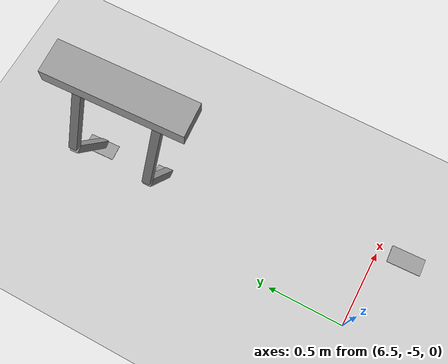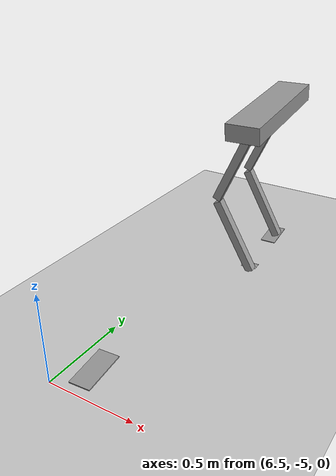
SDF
<sdf version="1.7">
 <world name="default">
  <model name="ground_plane">
   <static>1</static>
   <link name="link">
    <collision name="collision">
     <geometry><plane><normal>0 0 1</normal><size>100 100</size></plane></geometry>
     <surface>
      <contact><collide_bitmask>65535</collide_bitmask></contact>
      <friction><ode><mu>100</mu><mu2>50</mu2></ode></friction>
     </surface>
    </collision>
    <visual name="visual">
     <cast_shadows>0</cast_shadows>
     <geometry><plane><normal>0 0 1</normal><size>100 100</size></plane></geometry>
     <material>
      <script><uri>file://media/materials/scripts/gazebo.material</uri><name>Gazebo/Grey</name></script>
     </material>
    </visual>
   </link>
  </model>
  <model name="HumanoidRobot_clone">
   <link name="link_0">
    <inertial>
     <mass>1</mass>
     <inertia>
      <ixx>0.166667</ixx>
      <ixy>0</ixy>
      <ixz>0</ixz>
      <iyy>0.166667</iyy>
      <iyz>0</iyz>
      <izz>0.166667</izz>
     </inertia>
    </inertial>
    <pose>0.079366 0.216312 0.457777 0 -0 0</pose>
    <visual name="visual">
     <geometry><box><size>0.2 0.8 0.1</size></box></geometry>
     <material>
      <lighting>1</lighting>
      <script><uri>file://media/materials/scripts/gazebo.material</uri><name>Gazebo/Grey</name></script>
      <shader type="pixel"><normal_map>__default__</normal_map></shader>
      <ambient>0.3 0.3 0.3 1</ambient>
      <diffuse>0.7 0.7 0.7 1</diffuse>
      <specular>0.01 0.01 0.01 1</specular>
      <emissive>0 0 0 1</emissive>
     </material>
    </visual>
    <collision name="collision">
     <geometry><box><size>0.2 0.8 0.1</size></box></geometry>
     <surface>
      <friction>
       <ode><mu>1</mu><mu2>1</mu2><fdir1>0 0 0</fdir1><slip1>0</slip1><slip2>0</slip2></ode>
       <torsional>
        <coefficient>1</coefficient>
        <patch_radius>0</patch_radius>
        <surface_radius>0</surface_radius>
        <use_patch_radius>1</use_patch_radius>
        <ode><slip>0</slip></ode>
       </torsional>
      </friction>
      <bounce><restitution_coefficient>0</restitution_coefficient><threshold>1e+06</threshold></bounce>
      <contact>
       <collide_without_contact>0</collide_without_contact>
       <collide_without_contact_bitmask>1</collide_without_contact_bitmask>
       <collide_bitmask>1</collide_bitmask>
       <ode>
        <soft_cfm>0</soft_cfm>
        <soft_erp>0.2</soft_erp>
        <kp>1e+13</kp>
        <kd>1</kd>
        <max_vel>0.01</max_vel>
        <min_depth>0</min_depth>
       </ode>
       <bullet>
        <split_impulse>1</split_impulse>
        <split_impulse_penetration_threshold>-0.01</split_impulse_penetration_threshold>
        <soft_cfm>0</soft_cfm>
        <soft_erp>0.2</soft_erp>
        <kp>1e+13</kp>
        <kd>1</kd>
       </bullet>
      </contact>
     </surface>
    </collision>
   </link>
   <link name="link_1">
    <inertial>
     <mass>1</mass>
     <inertia>
      <ixx>0.166667</ixx>
      <ixy>0</ixy>
      <ixz>0</ixz>
      <iyy>0.166667</iyy>
      <iyz>0</iyz>
      <izz>0.166667</izz>
     </inertia>
    </inertial>
    <pose>0.035258 -0.030805 -0.033667 0 -0 0</pose>
    <visual name="visual">
     <pose>0 0 -0.5 0 -0 0</pose>
     <geometry><box><size>0.1 0.2 0.005</size></box></geometry>
     <material>
      <lighting>1</lighting>
      <script><uri>file://media/materials/scripts/gazebo.material</uri><name>Gazebo/Grey</name></script>
      <shader type="pixel"><normal_map>__default__</normal_map></shader>
      <ambient>0.3 0.3 0.3 1</ambient>
      <diffuse>0.7 0.7 0.7 1</diffuse>
      <specular>0.01 0.01 0.01 1</specular>
      <emissive>0 0 0 1</emissive>
     </material>
    </visual>
    <collision name="collision">
     <pose>0 0 -0.5 0 -0 0</pose>
     <geometry><box><size>0.1 0.2 0.005</size></box></geometry>
     <surface>
      <friction>
       <ode><mu>1</mu><mu2>1</mu2><fdir1>0 0 0</fdir1><slip1>0</slip1><slip2>0</slip2></ode>
       <torsional>
        <coefficient>1</coefficient>
        <patch_radius>0</patch_radius>
        <surface_radius>0</surface_radius>
        <use_patch_radius>1</use_patch_radius>
        <ode><slip>0</slip></ode>
       </torsional>
      </friction>
      <bounce><restitution_coefficient>0</restitution_coefficient><threshold>1e+06</threshold></bounce>
      <contact>
       <collide_without_contact>0</collide_without_contact>
       <collide_without_contact_bitmask>1</collide_without_contact_bitmask>
       <collide_bitmask>1</collide_bitmask>
       <ode>
        <soft_cfm>0</soft_cfm>
        <soft_erp>0.2</soft_erp>
        <kp>1e+13</kp>
        <kd>1</kd>
        <max_vel>0.01</max_vel>
        <min_depth>0</min_depth>
       </ode>
       <bullet>
        <split_impulse>1</split_impulse>
        <split_impulse_penetration_threshold>-0.01</split_impulse_penetration_threshold>
        <soft_cfm>0</soft_cfm>
        <soft_erp>0.2</soft_erp>
        <kp>1e+13</kp>
        <kd>1</kd>
       </bullet>
      </contact>
     </surface>
    </collision>
   </link>
   <link name="link_1_clone">
    <inertial>
     <mass>1</mass>
     <inertia>
      <ixx>0.166667</ixx>
      <ixy>0</ixy>
      <ixz>0</ixz>
      <iyy>0.166667</iyy>
      <iyz>0</iyz>
      <izz>0.166667</izz>
     </inertia>
    </inertial>
    <pose>0.038471 -1.52445 -0.033667 0 -0 0</pose>
    <visual name="visual">
     <geometry><box><size>0.1 0.2 0.005</size></box></geometry>
     <material>
      <lighting>1</lighting>
      <script><uri>file://media/materials/scripts/gazebo.material</uri><name>Gazebo/Grey</name></script>
      <shader type="pixel"><normal_map>__default__</normal_map></shader>
      <ambient>0.3 0.3 0.3 1</ambient>
      <diffuse>0.7 0.7 0.7 1</diffuse>
      <specular>0.01 0.01 0.01 1</specular>
      <emissive>0 0 0 1</emissive>
     </material>
    </visual>
    <collision name="collision">
     <geometry><box><size>0.1 0.2 0.005</size></box></geometry>
     <surface>
      <friction>
       <ode><mu>1</mu><mu2>1</mu2><fdir1>0 0 0</fdir1><slip1>0</slip1><slip2>0</slip2></ode>
       <torsional>
        <coefficient>1</coefficient>
        <patch_radius>0</patch_radius>
        <surface_radius>0</surface_radius>
        <use_patch_radius>1</use_patch_radius>
        <ode><slip>0</slip></ode>
       </torsional>
      </friction>
      <bounce><restitution_coefficient>0</restitution_coefficient><threshold>1e+06</threshold></bounce>
      <contact>
       <collide_without_contact>0</collide_without_contact>
       <collide_without_contact_bitmask>1</collide_without_contact_bitmask>
       <collide_bitmask>1</collide_bitmask>
       <ode>
        <soft_cfm>0</soft_cfm>
        <soft_erp>0.2</soft_erp>
        <kp>1e+13</kp>
        <kd>1</kd>
        <max_vel>0.01</max_vel>
        <min_depth>0</min_depth>
       </ode>
       <bullet>
        <split_impulse>1</split_impulse>
        <split_impulse_penetration_threshold>-0.01</split_impulse_penetration_threshold>
        <soft_cfm>0</soft_cfm>
        <soft_erp>0.2</soft_erp>
        <kp>1e+13</kp>
        <kd>1</kd>
       </bullet>
      </contact>
     </surface>
    </collision>
   </link>
   <link name="link_1_clone_0">
    <inertial>
     <mass>1</mass>
     <inertia>
      <ixx>0.166667</ixx>
      <ixy>0</ixy>
      <ixz>0</ixz>
      <iyy>0.166667</iyy>
      <iyz>0</iyz>
      <izz>0.166667</izz>
     </inertia>
    </inertial>
    <pose>0.035258 0.453517 -0.033667 0 -0 0</pose>
    <visual name="visual">
     <pose>0 0 -0.5 0 -0 0</pose>
     <geometry><box><size>0.1 0.2 0.005</size></box></geometry>
     <material>
      <lighting>1</lighting>
      <script><uri>file://media/materials/scripts/gazebo.material</uri><name>Gazebo/Grey</name></script>
      <shader type="pixel"><normal_map>__default__</normal_map></shader>
      <ambient>0.3 0.3 0.3 1</ambient>
      <diffuse>0.7 0.7 0.7 1</diffuse>
      <specular>0.01 0.01 0.01 1</specular>
      <emissive>0 0 0 1</emissive>
     </material>
    </visual>
    <collision name="collision">
     <pose>0 0 -0.5 0 -0 0</pose>
     <geometry><box><size>0.1 0.2 0.005</size></box></geometry>
     <surface>
      <friction>
       <ode><mu>1</mu><mu2>1</mu2><fdir1>0 0 0</fdir1><slip1>0</slip1><slip2>0</slip2></ode>
       <torsional>
        <coefficient>1</coefficient>
        <patch_radius>0</patch_radius>
        <surface_radius>0</surface_radius>
        <use_patch_radius>1</use_patch_radius>
        <ode><slip>0</slip></ode>
       </torsional>
      </friction>
      <bounce><restitution_coefficient>0</restitution_coefficient><threshold>1e+06</threshold></bounce>
      <contact>
       <collide_without_contact>0</collide_without_contact>
       <collide_without_contact_bitmask>1</collide_without_contact_bitmask>
       <collide_bitmask>1</collide_bitmask>
       <ode>
        <soft_cfm>0</soft_cfm>
        <soft_erp>0.2</soft_erp>
        <kp>1e+13</kp>
        <kd>1</kd>
        <max_vel>0.01</max_vel>
        <min_depth>0</min_depth>
       </ode>
       <bullet>
        <split_impulse>1</split_impulse>
        <split_impulse_penetration_threshold>-0.01</split_impulse_penetration_threshold>
        <soft_cfm>0</soft_cfm>
        <soft_erp>0.2</soft_erp>
        <kp>1e+13</kp>
        <kd>1</kd>
       </bullet>
      </contact>
     </surface>
    </collision>
   </link>
   <link name="link_2">
    <inertial>
     <mass>1</mass>
     <inertia>
      <ixx>0.166667</ixx>
      <ixy>0</ixy>
      <ixz>0</ixz>
      <iyy>0.166667</iyy>
      <iyz>0</iyz>
      <izz>0.166667</izz>
     </inertia>
    </inertial>
    <pose>-0.050369 -0.010805 0.171791 0 -0 0</pose>
    <visual name="visual">
     <pose>0 0 0 0 0.45 0</pose>
     <geometry><box><size>0.05 0.05 0.5</size></box></geometry>
     <material>
      <lighting>1</lighting>
      <script><uri>file://media/materials/scripts/gazebo.material</uri><name>Gazebo/Grey</name></script>
      <shader type="pixel"><normal_map>__default__</normal_map></shader>
      <ambient>0.3 0.3 0.3 1</ambient>
      <diffuse>0.7 0.7 0.7 1</diffuse>
      <specular>0.01 0.01 0.01 1</specular>
      <emissive>0 0 0 1</emissive>
     </material>
    </visual>
    <collision name="collision">
     <pose>0 0 0 0 0.45 0</pose>
     <geometry><box><size>0.05 0.05 0.5</size></box></geometry>
     <surface>
      <friction>
       <ode><mu>1</mu><mu2>1</mu2><fdir1>0 0 0</fdir1><slip1>0</slip1><slip2>0</slip2></ode>
       <torsional>
        <coefficient>1</coefficient>
        <patch_radius>0</patch_radius>
        <surface_radius>0</surface_radius>
        <use_patch_radius>1</use_patch_radius>
        <ode><slip>0</slip></ode>
       </torsional>
      </friction>
      <bounce><restitution_coefficient>0</restitution_coefficient><threshold>1e+06</threshold></bounce>
      <contact>
       <collide_without_contact>0</collide_without_contact>
       <collide_without_contact_bitmask>1</collide_without_contact_bitmask>
       <collide_bitmask>1</collide_bitmask>
       <ode>
        <soft_cfm>0</soft_cfm>
        <soft_erp>0.2</soft_erp>
        <kp>1e+13</kp>
        <kd>1</kd>
        <max_vel>0.01</max_vel>
        <min_depth>0</min_depth>
       </ode>
       <bullet>
        <split_impulse>1</split_impulse>
        <split_impulse_penetration_threshold>-0.01</split_impulse_penetration_threshold>
        <soft_cfm>0</soft_cfm>
        <soft_erp>0.2</soft_erp>
        <kp>1e+13</kp>
        <kd>1</kd>
       </bullet>
      </contact>
     </surface>
    </collision>
   </link>
   <link name="link_2_clone">
    <inertial>
     <mass>1</mass>
     <inertia>
      <ixx>0.166667</ixx>
      <ixy>0</ixy>
      <ixz>0</ixz>
      <iyy>0.166667</iyy>
      <iyz>0</iyz>
      <izz>0.166667</izz>
     </inertia>
    </inertial>
    <pose>-0.045995 0.453517 0.171791 0 -0 0</pose>
    <visual name="visual">
     <pose>0 0 0 0 0.45 0</pose>
     <geometry><box><size>0.05 0.05 0.5</size></box></geometry>
     <material>
      <lighting>1</lighting>
      <script><uri>file://media/materials/scripts/gazebo.material</uri><name>Gazebo/Grey</name></script>
      <shader type="pixel"><normal_map>__default__</normal_map></shader>
      <ambient>0.3 0.3 0.3 1</ambient>
      <diffuse>0.7 0.7 0.7 1</diffuse>
      <specular>0.01 0.01 0.01 1</specular>
      <emissive>0 0 0 1</emissive>
     </material>
    </visual>
    <collision name="collision">
     <pose>0 0 0 0 0.45 0</pose>
     <geometry><box><size>0.05 0.05 0.5</size></box></geometry>
     <surface>
      <friction>
       <ode><mu>1</mu><mu2>1</mu2><fdir1>0 0 0</fdir1><slip1>0</slip1><slip2>0</slip2></ode>
       <torsional>
        <coefficient>1</coefficient>
        <patch_radius>0</patch_radius>
        <surface_radius>0</surface_radius>
        <use_patch_radius>1</use_patch_radius>
        <ode><slip>0</slip></ode>
       </torsional>
      </friction>
      <bounce><restitution_coefficient>0</restitution_coefficient><threshold>1e+06</threshold></bounce>
      <contact>
       <collide_without_contact>0</collide_without_contact>
       <collide_without_contact_bitmask>1</collide_without_contact_bitmask>
       <collide_bitmask>1</collide_bitmask>
       <ode>
        <soft_cfm>0</soft_cfm>
        <soft_erp>0.2</soft_erp>
        <kp>1e+13</kp>
        <kd>1</kd>
        <max_vel>0.01</max_vel>
        <min_depth>0</min_depth>
       </ode>
       <bullet>
        <split_impulse>1</split_impulse>
        <split_impulse_penetration_threshold>-0.01</split_impulse_penetration_threshold>
        <soft_cfm>0</soft_cfm>
        <soft_erp>0.2</soft_erp>
        <kp>1e+13</kp>
        <kd>1</kd>
       </bullet>
      </contact>
     </surface>
    </collision>
   </link>
   <link name="link_2_clone_0">
    <inertial>
     <mass>1</mass>
     <inertia>
      <ixx>0.166667</ixx>
      <ixy>0</ixy>
      <ixz>0</ixz>
      <iyy>0.166667</iyy>
      <iyz>0</iyz>
      <izz>0.166667</izz>
     </inertia>
    </inertial>
    <pose>-0.045995 -0.010805 -0.350181 0 -0 0</pose>
    <visual name="visual">
     <pose>0 0 0.05 0 -0.45 0</pose>
     <geometry><box><size>0.05 0.05 0.5</size></box></geometry>
     <material>
      <lighting>1</lighting>
      <script><uri>file://media/materials/scripts/gazebo.material</uri><name>Gazebo/Grey</name></script>
      <shader type="pixel"><normal_map>__default__</normal_map></shader>
      <ambient>0.3 0.3 0.3 1</ambient>
      <diffuse>0.7 0.7 0.7 1</diffuse>
      <specular>0.01 0.01 0.01 1</specular>
      <emissive>0 0 0 1</emissive>
     </material>
    </visual>
    <collision name="collision">
     <pose>0 0 0.05 0 -0.45 0</pose>
     <geometry><box><size>0.05 0.05 0.5</size></box></geometry>
     <surface>
      <friction>
       <ode><mu>1</mu><mu2>1</mu2><fdir1>0 0 0</fdir1><slip1>0</slip1><slip2>0</slip2></ode>
       <torsional>
        <coefficient>1</coefficient>
        <patch_radius>0</patch_radius>
        <surface_radius>0</surface_radius>
        <use_patch_radius>1</use_patch_radius>
        <ode><slip>0</slip></ode>
       </torsional>
      </friction>
      <bounce><restitution_coefficient>0</restitution_coefficient><threshold>1e+06</threshold></bounce>
      <contact>
       <collide_without_contact>0</collide_without_contact>
       <collide_without_contact_bitmask>1</collide_without_contact_bitmask>
       <collide_bitmask>1</collide_bitmask>
       <ode>
        <soft_cfm>0</soft_cfm>
        <soft_erp>0.2</soft_erp>
        <kp>1e+13</kp>
        <kd>1</kd>
        <max_vel>0.01</max_vel>
        <min_depth>0</min_depth>
       </ode>
       <bullet>
        <split_impulse>1</split_impulse>
        <split_impulse_penetration_threshold>-0.01</split_impulse_penetration_threshold>
        <soft_cfm>0</soft_cfm>
        <soft_erp>0.2</soft_erp>
        <kp>1e+13</kp>
        <kd>1</kd>
       </bullet>
      </contact>
     </surface>
    </collision>
   </link>
   <link name="link_2_clone_0_clone">
    <inertial>
     <mass>1</mass>
     <inertia>
      <ixx>0.166667</ixx>
      <ixy>0</ixy>
      <ixz>0</ixz>
      <iyy>0.166667</iyy>
      <iyz>0</iyz>
      <izz>0.166667</izz>
     </inertia>
    </inertial>
    <pose>-0.045995 0.453517 -0.350181 0 -0 0</pose>
    <visual name="visual">
     <pose>0 0 0.05 0 -0.45 0</pose>
     <geometry><box><size>0.05 0.05 0.5</size></box></geometry>
     <material>
      <lighting>1</lighting>
      <script><uri>file://media/materials/scripts/gazebo.material</uri><name>Gazebo/Grey</name></script>
      <shader type="pixel"><normal_map>__default__</normal_map></shader>
      <ambient>0.3 0.3 0.3 1</ambient>
      <diffuse>0.7 0.7 0.7 1</diffuse>
      <specular>0.01 0.01 0.01 1</specular>
      <emissive>0 0 0 1</emissive>
     </material>
    </visual>
    <collision name="collision">
     <pose>0 0 0.05 0 -0.45 0</pose>
     <geometry><box><size>0.05 0.05 0.5</size></box></geometry>
     <surface>
      <friction>
       <ode><mu>1</mu><mu2>1</mu2><fdir1>0 0 0</fdir1><slip1>0</slip1><slip2>0</slip2></ode>
       <torsional>
        <coefficient>1</coefficient>
        <patch_radius>0</patch_radius>
        <surface_radius>0</surface_radius>
        <use_patch_radius>1</use_patch_radius>
        <ode><slip>0</slip></ode>
       </torsional>
      </friction>
      <bounce><restitution_coefficient>0</restitution_coefficient><threshold>1e+06</threshold></bounce>
      <contact>
       <collide_without_contact>0</collide_without_contact>
       <collide_without_contact_bitmask>1</collide_without_contact_bitmask>
       <collide_bitmask>1</collide_bitmask>
       <ode>
        <soft_cfm>0</soft_cfm>
        <soft_erp>0.2</soft_erp>
        <kp>1e+13</kp>
        <kd>1</kd>
        <max_vel>0.01</max_vel>
        <min_depth>0</min_depth>
       </ode>
       <bullet>
        <split_impulse>1</split_impulse>
        <split_impulse_penetration_threshold>-0.01</split_impulse_penetration_threshold>
        <soft_cfm>0</soft_cfm>
        <soft_erp>0.2</soft_erp>
        <kp>1e+13</kp>
        <kd>1</kd>
       </bullet>
      </contact>
     </surface>
    </collision>
   </link>
   <joint name="link_1_JOINT_13" type="screw">
    <parent>link_1</parent>
    <child>link_2_clone_0</child>
    <axis>
     <xyz>1 0 0</xyz>
     <limit>
      <lower>-1.79769e+308</lower>
      <upper>1.79769e+308</upper>
      <effort>-1</effort>
      <velocity>-1</velocity>
     </limit>
     <dynamics>
      <spring_reference>0</spring_reference>
      <spring_stiffness>0</spring_stiffness>
      <damping>0</damping>
     </dynamics>
    </axis>
    <physics>
     <ode><limit><cfm>0</cfm><erp>0.2</erp></limit><suspension><cfm>0</cfm><erp>0.2</erp></suspension></ode>
    </physics>
    <thread_pitch>1</thread_pitch>
   </joint>
   <joint name="link_1_JOINT_1" type="revolute">
    <parent>link_1</parent>
    <child>link_2_clone_0</child>
    <axis>
     <xyz>1 0 0</xyz>
     <limit>
      <lower>-1.79769e+308</lower>
      <upper>1.79769e+308</upper>
      <effort>-1</effort>
      <velocity>-1</velocity>
     </limit>
     <dynamics>
      <spring_reference>0</spring_reference>
      <spring_stiffness>0</spring_stiffness>
      <damping>0</damping>
     </dynamics>
    </axis>
    <physics>
     <ode><limit><cfm>0</cfm><erp>0.2</erp></limit><suspension><cfm>0</cfm><erp>0.2</erp></suspension></ode>
    </physics>
   </joint>
   <joint name="link_1_clone_0_JOINT_10" type="screw">
    <parent>link_1_clone_0</parent>
    <child>link_2_clone_0_clone</child>
    <axis>
     <xyz>1 0 0</xyz>
     <limit>
      <lower>-1.79769e+308</lower>
      <upper>1.79769e+308</upper>
      <effort>-1</effort>
      <velocity>-1</velocity>
     </limit>
     <dynamics>
      <spring_reference>0</spring_reference>
      <spring_stiffness>0</spring_stiffness>
      <damping>0</damping>
     </dynamics>
    </axis>
    <physics>
     <ode><limit><cfm>0</cfm><erp>0.2</erp></limit><suspension><cfm>0</cfm><erp>0.2</erp></suspension></ode>
    </physics>
    <thread_pitch>1</thread_pitch>
   </joint>
   <joint name="link_1_clone_0_JOINT_3" type="revolute">
    <parent>link_1_clone_0</parent>
    <child>link_2_clone_0_clone</child>
    <axis>
     <xyz>1 0 0</xyz>
     <limit>
      <lower>-1.79769e+308</lower>
      <upper>1.79769e+308</upper>
      <effort>-1</effort>
      <velocity>-1</velocity>
     </limit>
     <dynamics>
      <spring_reference>0</spring_reference>
      <spring_stiffness>0</spring_stiffness>
      <damping>0</damping>
     </dynamics>
    </axis>
    <physics>
     <ode><limit><cfm>0</cfm><erp>0.2</erp></limit><suspension><cfm>0</cfm><erp>0.2</erp></suspension></ode>
    </physics>
   </joint>
   <joint name="link_1_clone_0_JOINT_8" type="fixed">
    <parent>link_1_clone_0</parent>
    <child>link_2_clone_0_clone</child>
    <physics>
     <ode><limit><cfm>0</cfm><erp>0.2</erp></limit><suspension><cfm>0</cfm><erp>0.2</erp></suspension></ode>
    </physics>
   </joint>
   <joint name="link_2_JOINT_0" type="revolute">
    <parent>link_2</parent>
    <child>link_2_clone_0</child>
    <axis>
     <xyz>1 0 0</xyz>
     <limit>
      <lower>-1.79769e+308</lower>
      <upper>1.79769e+308</upper>
      <effort>-1</effort>
      <velocity>-1</velocity>
     </limit>
     <dynamics>
      <spring_reference>0</spring_reference>
      <spring_stiffness>0</spring_stiffness>
      <damping>0</damping>
     </dynamics>
    </axis>
    <physics>
     <ode><limit><cfm>0</cfm><erp>0.2</erp></limit><suspension><cfm>0</cfm><erp>0.2</erp></suspension></ode>
    </physics>
   </joint>
   <joint name="link_2_JOINT_14" type="revolute">
    <parent>link_2</parent>
    <child>link_2_clone_0</child>
    <axis>
     <xyz>1 0 0</xyz>
     <limit>
      <lower>-1.79769e+308</lower>
      <upper>1.79769e+308</upper>
      <effort>-1</effort>
      <velocity>-1</velocity>
     </limit>
     <dynamics>
      <spring_reference>0</spring_reference>
      <spring_stiffness>0</spring_stiffness>
      <damping>0</damping>
     </dynamics>
    </axis>
    <physics>
     <ode><limit><cfm>0</cfm><erp>0.2</erp></limit><suspension><cfm>0</cfm><erp>0.2</erp></suspension></ode>
    </physics>
   </joint>
   <joint name="link_2_JOINT_18" type="screw">
    <parent>link_2</parent>
    <child>link_0</child>
    <axis>
     <xyz>1 0 0</xyz>
     <limit>
      <lower>-1.79769e+308</lower>
      <upper>1.79769e+308</upper>
      <effort>-1</effort>
      <velocity>-1</velocity>
     </limit>
     <dynamics>
      <spring_reference>0</spring_reference>
      <spring_stiffness>0</spring_stiffness>
      <damping>0</damping>
     </dynamics>
    </axis>
    <physics>
     <ode><limit><cfm>0</cfm><erp>0.2</erp></limit><suspension><cfm>0</cfm><erp>0.2</erp></suspension></ode>
    </physics>
    <thread_pitch>1</thread_pitch>
   </joint>
   <joint name="link_2_clone_0_clone_JOINT_11" type="revolute">
    <parent>link_2_clone_0_clone</parent>
    <child>link_2_clone</child>
    <axis>
     <xyz>1 0 0</xyz>
     <limit>
      <lower>-1.79769e+308</lower>
      <upper>1.79769e+308</upper>
      <effort>-1</effort>
      <velocity>-1</velocity>
     </limit>
     <dynamics>
      <spring_reference>0</spring_reference>
      <spring_stiffness>0</spring_stiffness>
      <damping>0</damping>
     </dynamics>
    </axis>
    <physics>
     <ode><limit><cfm>0</cfm><erp>0.2</erp></limit><suspension><cfm>0</cfm><erp>0.2</erp></suspension></ode>
    </physics>
   </joint>
   <joint name="link_2_clone_0_clone_JOINT_4" type="revolute">
    <parent>link_2_clone_0_clone</parent>
    <child>link_2_clone</child>
    <axis>
     <xyz>1 0 0</xyz>
     <limit>
      <lower>-1.79769e+308</lower>
      <upper>1.79769e+308</upper>
      <effort>-1</effort>
      <velocity>-1</velocity>
     </limit>
     <dynamics>
      <spring_reference>0</spring_reference>
      <spring_stiffness>0</spring_stiffness>
      <damping>0</damping>
     </dynamics>
    </axis>
    <physics>
     <ode><limit><cfm>0</cfm><erp>0.2</erp></limit><suspension><cfm>0</cfm><erp>0.2</erp></suspension></ode>
    </physics>
   </joint>
   <joint name="link_2_clone_0_clone_JOINT_5" type="revolute">
    <parent>link_2_clone_0_clone</parent>
    <child>link_2_clone</child>
    <axis>
     <xyz>1 0 0</xyz>
     <limit>
      <lower>-1.79769e+308</lower>
      <upper>1.79769e+308</upper>
      <effort>-1</effort>
      <velocity>-1</velocity>
     </limit>
     <dynamics>
      <spring_reference>0</spring_reference>
      <spring_stiffness>0</spring_stiffness>
      <damping>0</damping>
     </dynamics>
    </axis>
    <physics>
     <ode><limit><cfm>0</cfm><erp>0.2</erp></limit><suspension><cfm>0</cfm><erp>0.2</erp></suspension></ode>
    </physics>
   </joint>
   <joint name="link_2_clone_0_clone_JOINT_6" type="revolute">
    <parent>link_2_clone_0_clone</parent>
    <child>link_2_clone</child>
    <axis>
     <xyz>1 0 0</xyz>
     <limit>
      <lower>-1.79769e+308</lower>
      <upper>1.79769e+308</upper>
      <effort>-1</effort>
      <velocity>-1</velocity>
     </limit>
     <dynamics>
      <spring_reference>0</spring_reference>
      <spring_stiffness>0</spring_stiffness>
      <damping>0</damping>
     </dynamics>
    </axis>
    <physics>
     <ode><limit><cfm>0</cfm><erp>0.2</erp></limit><suspension><cfm>0</cfm><erp>0.2</erp></suspension></ode>
    </physics>
   </joint>
   <joint name="link_2_clone_0_clone_JOINT_9" type="screw">
    <parent>link_2_clone_0_clone</parent>
    <child>link_2_clone</child>
    <axis>
     <xyz>1 0 0</xyz>
     <limit>
      <lower>-1.79769e+308</lower>
      <upper>1.79769e+308</upper>
      <effort>-1</effort>
      <velocity>-1</velocity>
     </limit>
     <dynamics>
      <spring_reference>0</spring_reference>
      <spring_stiffness>0</spring_stiffness>
      <damping>0</damping>
     </dynamics>
    </axis>
    <physics>
     <ode><limit><cfm>0</cfm><erp>0.2</erp></limit><suspension><cfm>0</cfm><erp>0.2</erp></suspension></ode>
    </physics>
    <thread_pitch>1</thread_pitch>
   </joint>
   <joint name="link_2_clone_JOINT_15" type="screw">
    <parent>link_2_clone</parent>
    <child>link_0</child>
    <axis>
     <xyz>1 0 0</xyz>
     <limit>
      <lower>-1.79769e+308</lower>
      <upper>1.79769e+308</upper>
      <effort>-1</effort>
      <velocity>-1</velocity>
     </limit>
     <dynamics>
      <spring_reference>0</spring_reference>
      <spring_stiffness>0</spring_stiffness>
      <damping>0</damping>
     </dynamics>
    </axis>
    <physics>
     <ode><limit><cfm>0</cfm><erp>0.2</erp></limit><suspension><cfm>0</cfm><erp>0.2</erp></suspension></ode>
    </physics>
    <thread_pitch>1</thread_pitch>
   </joint>
   <joint name="link_2_clone_JOINT_17" type="screw">
    <parent>link_2_clone</parent>
    <child>link_0</child>
    <axis>
     <xyz>1 0 0</xyz>
     <limit>
      <lower>-1.79769e+308</lower>
      <upper>1.79769e+308</upper>
      <effort>-1</effort>
      <velocity>-1</velocity>
     </limit>
     <dynamics>
      <spring_reference>0</spring_reference>
      <spring_stiffness>0</spring_stiffness>
      <damping>0</damping>
     </dynamics>
    </axis>
    <physics>
     <ode><limit><cfm>0</cfm><erp>0.2</erp></limit><suspension><cfm>0</cfm><erp>0.2</erp></suspension></ode>
    </physics>
    <thread_pitch>1</thread_pitch>
   </joint>
   <static>0</static>
   <pose>6.80031 -3.61767 0.526113 0.077964 -7e-06 0.061736</pose>
  </model>
 </world>
</sdf>
